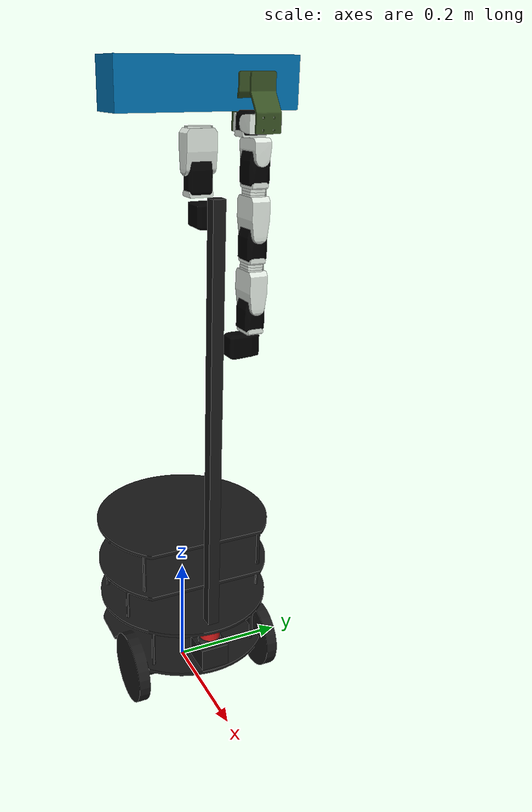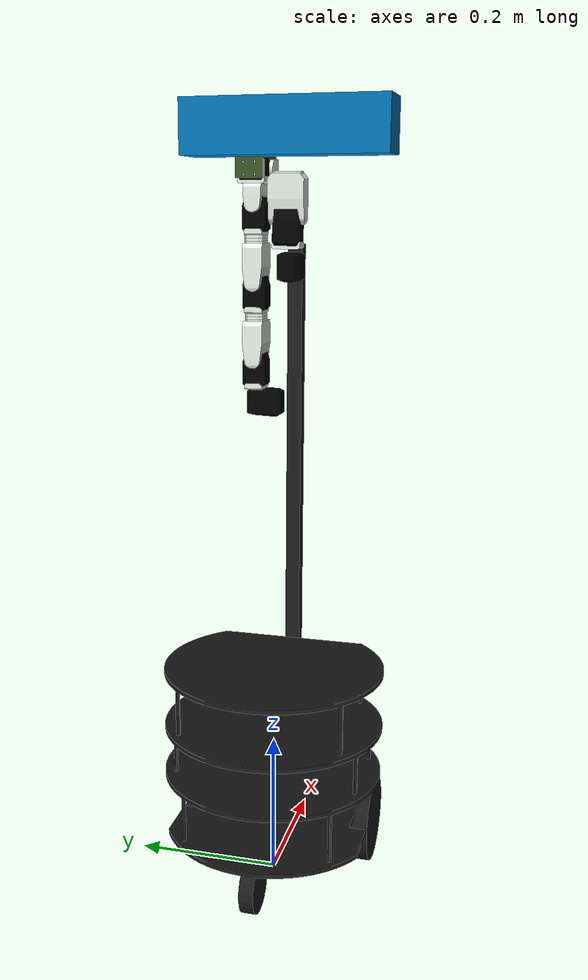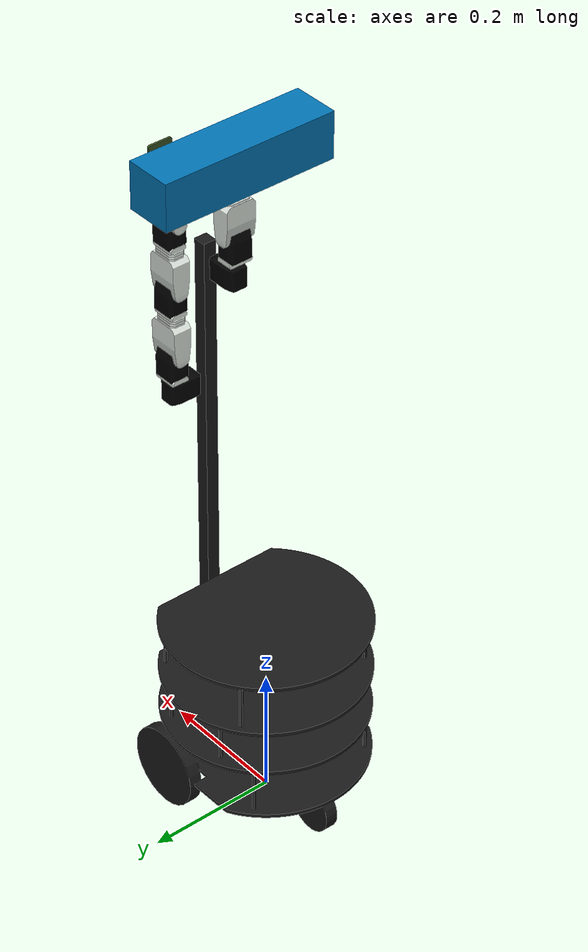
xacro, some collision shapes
<?xml version="1.0"?>

<robot name="pi_robot"
       xmlns:sensor="http://playerstage.sourceforge.net/gazebo/xmlschema/#sensor"
       xmlns:controller="http://playerstage.sourceforge.net/gazebo/xmlschema/#controller"
       xmlns:interface="http://playerstage.sourceforge.net/gazebo/xmlschema/#interface"
       xmlns:xacro="http://ros.org/wiki/xacro">

  <property name="PI_ROBOT_SCALE" value="0.0254"/>
  <property name="MESH_SCALE" value="100"/>
  <property name="GROUND_CLEARANCE" value="0.073" />

  <xacro:include filename="$(find rbx1_description)/urdf/pi_robot_head.xacro" />
  <xacro:include filename="$(find rbx1_description)/urdf/pi_robot_arm.xacro" />

  <material name="Green">
    <color rgba="0.0 0.8 0.0 1.0"/>
  </material>

  <material name="OffWhite">
    <color rgba="0.8 0.8 0.8 0.9"/>
  </material>

  <!-- base_footprint is a fictitious link(frame) that is on the ground right below base_link origin, navigation stack depends on this frame -->

  <link name="base_link">
    <inertial>
      <mass value="5.0" />
      <origin xyz="0 0 0" />
      <inertia ixx="1.0" ixy="0.0" ixz="0.0"
          iyy="1.0" iyz="0.0"
          izz="1.0" />
    </inertial>

    <visual>
      <origin xyz="0 0 ${GROUND_CLEARANCE}" rpy="0 0 -1.57" />
      <geometry>
          <mesh filename="package://rbx1_description/meshes/pi_robot.dae" scale="${PI_ROBOT_SCALE} ${PI_ROBOT_SCALE} ${PI_ROBOT_SCALE}"/>
      </geometry>
      <material name="grey">
	    <color rgba="0.1 0.1 0.1 10"/>
	  </material>
    </visual>

    <collision>
       <origin xyz="0 0 0.16" rpy="0 0 0" />
       <geometry>
          <cylinder length="0.32" radius=".15"/>
       </geometry>
     </collision>
  </link>

  <link name="base_laser_bottom">
	 <visual>
        <origin xyz="0 0 0" rpy="0 0 0" />
      <geometry>
        <box size="0.05 0.05 0.041" />
      </geometry>
        <material name="black">
           <color rgba="0.1 0.1 0.1 1.0"/>
        </material>
     </visual>
     <collision>
        <origin xyz="0 0 0" rpy="0 0 0" />
      <geometry>
        <box size="0.05 0.05 0.041" />
      </geometry>
       </collision>
	 <inertial>
       <mass value="0.1" />
         <inertia ixx="0.001" ixy="0.0" ixz="0.0"
                   iyy="0.001" iyz="0.0"
                   izz="0.001" />
      </inertial>
  </link>

  <joint name="base_laser_bottom_joint" type="fixed">
     <parent link="base_link"/>
     <child link="base_laser_bottom" />
     <origin xyz="0.123 0 ${0.0265 + GROUND_CLEARANCE}" rpy="0 0 0" />
   </joint>

  <link name="base_laser_middle">
	 <visual>
        <origin xyz="0 0 0" rpy="0 0 0" />
		<geometry>
          <cylinder length="0.0115" radius=".02"/>
        </geometry>
        <material name="dark_grey">
           <color rgba="0.2 0.2 0.2 1.0"/>
        </material>
     </visual>
     <collision>
        <origin xyz="0 0 0" rpy="0 0 0" />
		 <geometry>
          <cylinder length="0.0115" radius=".02"/>
         </geometry>
       </collision>
	 <inertial>
       <mass value="0.1" />
         <inertia ixx="0.001" ixy="0.0" ixz="0.0"
                   iyy="0.001" iyz="0.0"
                   izz="0.001" />
      </inertial>
   </link>

  <joint name="base_laser_middle_joint" type="fixed">
     <parent link="base_laser_bottom"/>
     <child link="base_laser_middle" />
     <origin xyz="0 0 0.02625" rpy="0 0 0" />
   </joint>

  <link name="base_laser">
	 <visual>
        <origin xyz="0 0 0" rpy="0 0 0" />
		<geometry>
          <cylinder length="0.0175" radius=".0185"/>
        </geometry>
        <material name="red">
           <color rgba="0.8 0.1 0.1 1.0"/>
        </material>
     </visual>
     <collision>
        <origin xyz="0 0 0" rpy="0 0 0" />
		 <geometry>
          <cylinder length="0.0175" radius=".0185"/>
         </geometry>
       </collision>
	 <inertial>
       <mass value="0.1" />
         <inertia ixx="0.001" ixy="0.0" ixz="0.0"
                   iyy="0.001" iyz="0.0"
                   izz="0.001" />
      </inertial>
   </link>

   <joint name="base_laser_joint" type="fixed">
     <parent link="base_laser_middle"/>
     <child link="base_laser" />
     <origin xyz="0 0 0.0145" rpy="0 0 0" />
   </joint>

   <!-- Attach the head -->
   <pi_robot_head parent="base_link" color="white">
     <origin xyz="${0.088 - AX12_DEPTH/2} 0 ${0.798 + GROUND_CLEARANCE}"/>
   </pi_robot_head>

    <!-- Attach the arm -->
    <pi_robot_arm parent="base_link" color="white" gripper_color="green">
      <origin xyz="0.125 ${AX12_DEPTH + 0.012} ${AX12_HEIGHT + 0.55 + GROUND_CLEARANCE}" rpy="0 0 1.57" />
    </pi_robot_arm>

</robot>

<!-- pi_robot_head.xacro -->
<robot name="pi_robot_head" xmlns:xacro="http://ros.org/wiki/xacro">
  <xacro:include filename="$(find rbx1_description)/urdf/pi_robot_head_hardware.xacro" />

  <macro name="pi_robot_head" params="parent color *origin">
    <link name="head_base_link" />
    <joint name="head_base_joint" type="fixed">
      <insert_block name="origin" />
      <parent link="${parent}"/>
      <child link="head_base_link" />
    </joint>

    <!-- fake head_pan_link joint -->
    <link name="head_pan_link" />
    <joint name="fake_head_pan_joint" type="fixed">
      <origin xyz="0 0 0" rpy="0 ${M_PI/2} ${M_PI/2}" />
      <parent link="head_pan_servo_link"/>
      <child link="head_pan_link" />
    </joint>

     <!-- fake head_tilt_link joint -->
    <link name="head_tilt_link" />
    <joint name="fake_head_tilt_joint" type="fixed">
      <origin xyz="0 0 0" rpy="0 0 ${M_PI}" />
      <parent link="head_tilt_servo_link"/>
      <child link="head_tilt_link" />
    </joint>

    <!-- head pan joint -->
    <dynamixel_AX12_fixed parent="head_base_link" name="head_pan_servo">
       <origin xyz="0 0 ${-AX12_WIDTH/2}" rpy="${M_PI/2} 0 ${-M_PI/2}"/>
    </dynamixel_AX12_fixed>
    <bioloid_F3_head_revolute parent="head_pan_servo_link" number="10" joint_name="head_pan" x_loc="0" y_loc="${AX12_WIDTH/2 + 0.005}" z_loc="0.0" ulimit="2.9" llimit="-2.9" r="${-M_PI/2}" p="${M_PI/2}" y="${M_PI}" color="${color}"/>

    <dynamixel_AX12_fixed parent="bioloid_F3_head_10_link" name="head_tilt_servo">
       <origin xyz="0 0 ${-AX12_HEIGHT-F10_HEIGHT+0.001}" rpy="0 ${M_PI} 0"/>
    </dynamixel_AX12_fixed>

    <!--head tilt joint -->
    <bioloid_F4_head_revolute parent="head_tilt_servo_link" number="10" joint_name="head_tilt" x_loc="0" y_loc="0" z_loc="0" ulimit="2.9" llimit="-2.9" color="${color}"/>
    <bioloid_F10_fixed parent="bioloid_F4_head_10_link" name="head_tilt_bracket" color="${color}">
       <origin xyz="0 0 ${F4_HEIGHT + F10_HEIGHT/2}" rpy="0 0 0"/>
    </bioloid_F10_fixed>

    <joint name="base_camera_joint" type="fixed">
      <origin xyz="-0.03 0 0.058" rpy="0 0 ${M_PI}" />
      <parent link="head_tilt_bracket_link" />
      <child link="camera_link" />
    </joint>

    <link name="camera_link">
      <inertial>
        <mass value="0.00001" />
        <origin xyz="0 0 0" />
        <inertia ixx="1.0" ixy="0.0" ixz="0.0"
          iyy="1.0" iyz="0.0"
          izz="1.0" />
      </inertial>

      <visual>
        <origin xyz="0 0 0 " rpy="0 0 0" />
        <geometry>
          <mesh filename="package://rbx1_description/meshes/kinect.dae" scale="${MESH_SCALE} ${MESH_SCALE} ${MESH_SCALE}"/>
        </geometry>
      </visual>

      <collision>
        <origin xyz="-0.0275 0.0 0.0" rpy="0 0 0" />
        <geometry>
          <box size="0.0730 .2760 0.0720"/>
        </geometry>
      </collision>
    </link>

  <joint name="camera_depth_joint" type="fixed">
    <origin xyz="0 0.018 0" rpy="0 0 0" />
    <parent link="camera_link" />
    <child link="camera_depth_frame" />
  </joint>

  <link name="camera_depth_frame">
    <inertial>
      <mass value="0.000001" />
      <origin xyz="0 0 0" />
      <inertia ixx="0.0001" ixy="0.0" ixz="0.0"
        iyy="0.0001" iyz="0.0"
        izz="0.0001" />
    </inertial>
  </link>

  <joint name="camera_depth_optical_joint" type="fixed">
    <origin xyz="0 0 0" rpy="${-M_PI/2} 0 ${-M_PI/2}" />
    <parent link="camera_depth_frame" />
    <child link="camera_depth_optical_frame" />
  </joint>

  <link name="camera_depth_optical_frame">
    <inertial>
      <mass value="0.000001" />
      <origin xyz="0 0 0" />
      <inertia ixx="0.0001" ixy="0.0" ixz="0.0"
        iyy="0.0001" iyz="0.0"
        izz="0.0001" />
    </inertial>
  </link>

  <joint name="camera_rgb_joint" type="fixed">
    <origin xyz="0 -0.005 0" rpy="0 0 0" />
    <parent link="camera_link" />
    <child link="camera_rgb_frame" />
  </joint>

  <link name="camera_rgb_frame">
    <inertial>
      <mass value="0.000001" />
      <origin xyz="0 0 0" />
      <inertia ixx="0.0001" ixy="0.0" ixz="0.0"
        iyy="0.0001" iyz="0.0"
        izz="0.0001" />
    </inertial>
  </link>

  <joint name="camera_rgb_optical_joint" type="fixed">
    <origin xyz="0 0 0" rpy="${-M_PI/2} 0 ${-M_PI/2}" />
    <parent link="camera_rgb_frame" />
    <child link="camera_rgb_optical_frame" />
  </joint>

  <link name="camera_rgb_optical_frame">
    <inertial>
      <mass value="0.000001" />
      <origin xyz="0 0 0" />
      <inertia ixx="0.0001" ixy="0.0" ixz="0.0"
        iyy="0.0001" iyz="0.0"
        izz="0.0001" />
    </inertial>
  </link>

  <link name="left_eye_link">
    <visual>
      <origin xyz="0 0 0" rpy="0 1.57 0" />
	  <geometry>
	     <cylinder length="0.01" radius="0.01" />
	  </geometry>
	  <material name="OffWhite" />
	</visual>
    <collision>
	  <origin xyz="0 0 0" rpy="0 1.57 0" />
	  <geometry>
        <cylinder length="0.01" radius="0.01" />
      </geometry>
    </collision>
    <inertial>
       <mass value="0.00001" />
       <origin xyz="0 0 0" />
       <inertia ixx="1.0" ixy="0.0" ixz="0.0"
         iyy="1.0" iyz="0.0"
         izz="1.0" />
     </inertial>
  </link>

  <link name="right_eye_link">
    <visual>
      <origin xyz="0 0 0" rpy="0 1.57 0" />
	  <geometry>
	     <cylinder length="0.01" radius="0.01" />
	  </geometry>
	  <material name="OffWhite" />
	</visual>
    <collision>
	  <origin xyz="0 0 0" rpy="0 1.57 0" />
	  <geometry>
        <cylinder length="0.01" radius="0.01" />
      </geometry>
    </collision>
    <inertial>
       <mass value="0.00001" />
       <origin xyz="0 0 0" />
       <inertia ixx="1.0" ixy="0.0" ixz="0.0"
         iyy="1.0" iyz="0.0"
         izz="1.0" />
     </inertial>
  </link>

  <joint name="left_eye_joint" type="fixed">
    <parent link="camera_link" />
    <child link="left_eye_link" />
    <origin xyz="-0.005 0.035 0" rpy="0 0 0" />
  </joint>

  <joint name="right_eye_joint" type="fixed">
    <parent link="camera_link" />
    <child link="right_eye_link" />
    <origin xyz="-0.005 -0.035 0" rpy="0 0 0" />
  </joint>

 </macro>

</robot>

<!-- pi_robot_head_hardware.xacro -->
<robot name="pi_robot_head_hardware" xmlns:xacro="http://ros.org/wiki/xacro">
  <property name="M_PI" value="3.14159"/>
  <property name="M_SCALE" value="0.001"/>
  <property name="F10_HEIGHT" value="0.004"/>
  <property name="F4_HEIGHT" value="0.0525"/>
  <property name="F3_HEIGHT" value="0.009"/>
  <property name="AX12_HEIGHT" value="0.0385"/>
  <property name="AX12_WIDTH" value="0.038"/>
  <property name="AX12_DEPTH" value="0.048"/>
  <property name="F2_HEIGHT" value="0.0265"/>
  <property name="MESH_EXT" value="dae"/>
  <property name="MESH_SCALE" value="100"/>

  <macro name="bioloid_F10_fixed" params="parent number x_loc y_loc z_loc color">
    <joint name="bioloid_F10_${number}_joint" type="fixed">
      <origin xyz="${x_loc} ${y_loc} ${z_loc}" rpy="0 0 0" />
      <parent link="${parent}"/>
      <child link="bioloid_F10_${number}_link" />
    </joint>

    <link name="bioloid_F10_${number}_link">
      <inertial>
        <mass value="0.00001" />
        <origin xyz="0 0 0" />
        <inertia ixx="1.0" ixy="0.0" ixz="0.0"
          iyy="1.0" iyz="0.0"
          izz="1.0" />
      </inertial>

      <visual>
        <origin xyz=" 0 0 0 " rpy="0 0 0" />
        <geometry>
          <mesh filename="package://rbx1_description/meshes/F10.${MESH_EXT}" scale="${M_SCALE} ${M_SCALE} ${M_SCALE}"/>
        </geometry>
        <material name="${color}"/>
      </visual>

      <collision>
        <origin xyz="0.0 0.0 0.0" rpy="0 0 0" />
        <geometry>
          <box size="0.025 0.038 0.004"/>
        </geometry>
      </collision>
    </link>
  </macro>

  <macro name="bioloid_F3_fixed" params="parent number x_loc y_loc z_loc r p y color">
    <joint name="bioloid_F3_${number}_joint" type="fixed">
      <origin xyz="${x_loc} ${y_loc} ${z_loc}" rpy="${r} ${p} ${y}" />
      <parent link="${parent}"/>
      <child link="bioloid_F3_head_${number}_link" />
    </joint>

    <link name="bioloid_F3_${number}_link">
      <inertial>
        <mass value="0.00001" />
        <origin xyz="0 0 0" />
        <inertia ixx="1.0" ixy="0.0" ixz="0.0"
          iyy="1.0" iyz="0.0"
          izz="1.0" />
      </inertial>

      <visual>
        <origin xyz=" 0 0 0 " rpy="0 0 0" />
        <geometry>
          <mesh filename="package://rbx1_description/meshes/F3.${MESH_EXT}" scale="${M_SCALE} ${M_SCALE} ${M_SCALE}"/>
        </geometry>
        <material name="${color}"/>
      </visual>

      <collision>
        <origin xyz="0.0 0.0 -0.0045" rpy="0 0 0" />
        <geometry>
          <box size="0.025 0.038 0.009"/>
        </geometry>
      </collision>
    </link>
  </macro>

  <macro name="dynamixel_AX12_fixed" params="parent number x_loc y_loc z_loc r p y">
    <joint name="dynamixel_AX12_${number}_joint" type="fixed">
      <origin xyz="${x_loc} ${y_loc} ${z_loc}" rpy="${r} ${p} ${y}" />
      <parent link="${parent}"/>
      <child link="dynamixel_AX12_${number}_link" />
    </joint>

    <link name="dynamixel_AX12_${number}_link">
      <inertial>
        <mass value="0.00001" />
        <origin xyz="0 0 0" />
        <inertia ixx="1.0" ixy="0.0" ixz="0.0"
          iyy="1.0" iyz="0.0"
          izz="1.0" />
      </inertial>

      <visual>
        <origin xyz=" 0 0 0 " rpy="0 0 0" />
        <geometry>
          <mesh filename="package://rbx1_description/meshes/ax12_box.${MESH_EXT}" scale="${M_SCALE} ${M_SCALE} ${M_SCALE}"/>
        </geometry>
        <material name="black"/>
      </visual>

      <collision>
        <origin xyz="0.0 0.0 -0.0045" rpy="0 0 0" />
        <geometry>
          <box size="0.025 0.038 0.009"/>
        </geometry>
      </collision>
    </link>
  </macro>

  <macro name="bioloid_F3_head_revolute" params="parent number joint_name x_loc y_loc z_loc ulimit llimit r p y color">
    <joint name="${joint_name}_joint" type="revolute">
      <origin xyz="${x_loc} ${y_loc} ${z_loc}" rpy="${r} ${p} ${y}" />
      <parent link="${parent}"/>
       <axis xyz="0 0 -1"/>
      <limit effort="30" velocity="1.0" lower="${llimit}" upper="${ulimit}" />
      <child link="bioloid_F3_head_${number}_link" />
    </joint>

    <link name="bioloid_F3_head_${number}_link">
      <inertial>
        <mass value="0.00001" />
        <origin xyz="0 0 0" />
        <inertia ixx="1.0" ixy="0.0" ixz="0.0"
          iyy="1.0" iyz="0.0"
          izz="1.0" />
      </inertial>

      <visual>
        <origin xyz=" 0 0 0 " rpy="0 0 0" />
        <geometry>
          <mesh filename="package://rbx1_description/meshes/F3.${MESH_EXT}" scale="${M_SCALE} ${M_SCALE} ${M_SCALE}"/>
        </geometry>
        <material name="${color}"/>
      </visual>

      <collision>
        <origin xyz="0.0 0.0 -0.0045" rpy="0 0 0" />
        <geometry>
          <box size="0.025 0.038 0.009"/>
        </geometry>
      </collision>
    </link>
  </macro>

  <macro name="bioloid_F4_head_revolute" params="parent number joint_name x_loc y_loc z_loc ulimit llimit color">
    <joint name="${joint_name}_joint" type="revolute">
      <origin xyz="${x_loc} ${y_loc} ${z_loc}" rpy="0 0 0" />
      <parent link="${parent}"/>
      <axis xyz="0 -1 0"/>
      <limit effort="30" velocity="1.0" lower="${llimit}" upper="${ulimit}" />
      <child link="bioloid_F4_head_${number}_link" />
    </joint>

    <link name="bioloid_F4_head_${number}_link">
      <inertial>
        <mass value="0.00001" />
        <origin xyz="0 0 0" />
        <inertia ixx="1.0" ixy="0.0" ixz="0.0"
          iyy="1.0" iyz="0.0"
          izz="1.0" />
      </inertial>

      <visual>
        <origin xyz=" 0 0 0 " rpy="0 0 0" />
        <geometry>
          <mesh filename="package://rbx1_description/meshes/F4.${MESH_EXT}" scale="${M_SCALE} ${M_SCALE} ${M_SCALE}"/>
        </geometry>
        <material name="${color}"/>
      </visual>

      <collision>
        <origin xyz="0.0 0.0 0.0215" rpy="0 0 0" />
        <geometry>
          <box size="0.028 0.0485 0.065"/>
        </geometry>
      </collision>
    </link>
  </macro>

</robot>

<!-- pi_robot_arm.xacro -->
<robot name="pi_robot_arm" xmlns:xacro="http://ros.org/wiki/xacro">
  <property name="MESH_SCALE" value="100"/>

  <xacro:include filename="$(find rbx1_description)/urdf/pi_robot_arm_hardware.xacro" />

  <material name="white">
    <color rgba="0.87 0.90 0.87 1.0"/>
  </material>
  <material name="black">
    <color rgba="0.0 0.0 0.0 1.0"/>
  </material>
  <material name="green">
    <color rgba="0.22 0.32 0.14 1.0"/>
  </material>

  <macro name="pi_robot_arm" params="parent color gripper_color *origin">
    <link name="arm_base_link" />
    <joint name="arm_base_joint" type="fixed">
      <insert_block name="origin" />
      <parent link="${parent}"/>
      <child link="arm_base_link" />
    </joint>

    <!-- fake gripper_link joint -->
    <link name="gripper_link" />
    <joint name="gripper_link_joint" type="fixed">
      <origin xyz="0 0 .112" rpy="0 -${M_PI/2} 0" />
      <parent link="arm_wrist_flex_link"/>
      <child link="gripper_link" />
    </joint>

    <!-- shoulder pan joint -->
    <dynamixel_AX12_fixed parent="arm_base_link" name="arm_shoulder_pan_servo">
      <origin xyz="0 0 0" rpy="${M_PI/2} 0 ${M_PI/2}"/>
    </dynamixel_AX12_fixed>
    <bioloid_F3_revolute parent="arm_shoulder_pan_servo_link" name="arm_shoulder_pan" color="${color}" vlimit="0.785" llimit="-2.617" ulimit="2.617">
      <origin xyz="0 ${AX12_WIDTH/2} 0" rpy="${-M_PI/2} ${M_PI/2} ${M_PI}" />
    </bioloid_F3_revolute>

    <!-- shoulder lift joint -->
    <dynamixel_AX12_fixed parent="arm_shoulder_pan_link" name="arm_shoulder_lift_servo">
      <origin xyz="0 0 ${-AX12_HEIGHT-F10_HEIGHT+0.001}" rpy="0 ${M_PI} 0" />
    </dynamixel_AX12_fixed>
    <bioloid_F4_revolute parent="arm_shoulder_lift_servo_link" name="arm_shoulder_lift" color="${color}" vlimit="1.571" llimit="-2.617" ulimit="2.617">
      <origin xyz="0 0 0" rpy="0 0 0" />
    </bioloid_F4_revolute>
    <bioloid_F10_fixed parent="arm_shoulder_lift_link" name="arm_shoulder_F10_0" color="${color}">
      <origin xyz="0 0 ${F4_HEIGHT+F10_HEIGHT/2}" rpy="0 0 0" />
    </bioloid_F10_fixed>
    <bioloid_F10_fixed parent="arm_shoulder_F10_0_link" name="arm_shoulder_F10_1" color="${color}">
      <origin xyz="0 0 ${F10_HEIGHT}" rpy="0 0 0" />
    </bioloid_F10_fixed>
    <bioloid_F10_fixed parent="arm_shoulder_F10_1_link" name="arm_shoulder_F10_2" color="${color}">
      <origin xyz="0 0 ${F10_HEIGHT}" rpy="0 0 0" />
    </bioloid_F10_fixed>
    <bioloid_F3_fixed parent="arm_shoulder_F10_2_link" name="arm_shoulder_F3_0" color="${color}">
      <origin xyz="0 0 ${F10_HEIGHT/2}" rpy="0 ${M_PI} 0" />
    </bioloid_F3_fixed>

    <!-- elbow joint -->
    <dynamixel_AX12_fixed parent="arm_shoulder_F3_0_link" name="arm_elbow_flex_servo">
      <origin xyz="0 0 ${-AX12_HEIGHT-F10_HEIGHT+0.001}" rpy="0 ${M_PI} 0"/>
    </dynamixel_AX12_fixed>
    <bioloid_F4_revolute parent="arm_elbow_flex_servo_link" name="arm_elbow_flex" color="${color}" vlimit="1.571" llimit="-2.617" ulimit="2.617">
      <origin xyz="0 0 0" rpy="0 0 0" />
    </bioloid_F4_revolute>
    <bioloid_F10_fixed parent="arm_elbow_flex_link" name="arm_elbow_F10_0" color="${color}">
      <origin xyz="0 0 ${F4_HEIGHT+F10_HEIGHT/2}" rpy="0 0 0" />
    </bioloid_F10_fixed>
    <bioloid_F10_fixed parent="arm_elbow_F10_0_link" name="arm_elbow_F10_1" color="${color}">
      <origin xyz="0 0 ${F10_HEIGHT}" rpy="0 0 0" />
    </bioloid_F10_fixed>
    <bioloid_F10_fixed parent="arm_elbow_F10_1_link" name="arm_elbow_F10_2" color="${color}">
      <origin xyz="0 0 ${F10_HEIGHT}" rpy="0 0 0" />
    </bioloid_F10_fixed>
    <bioloid_F3_fixed parent="arm_elbow_F10_2_link" name="arm_elbow_F3_0" color="${color}">
      <origin xyz="0 0 ${F10_HEIGHT/2}" rpy="0 ${M_PI} 0" />
    </bioloid_F3_fixed>

    <!-- wrist joint -->
    <dynamixel_AX12_fixed parent="arm_elbow_F3_0_link" name="arm_wrist_flex_servo">
      <origin xyz="0 0 ${-AX12_HEIGHT-F10_HEIGHT+0.001}" rpy="0 ${M_PI} 0"/>
    </dynamixel_AX12_fixed>
    <bioloid_F2_revolute parent="arm_wrist_flex_servo_link" name="arm_wrist_flex" color="${color}" vlimit="1.571" llimit="-1.745" ulimit="1.745">
      <origin xyz="0 0 0" rpy="0 0 0" />
    </bioloid_F2_revolute>
    <bioloid_F3_fixed parent="arm_wrist_flex_link" name="arm_wrist_F3_0" color="${color}">
      <origin xyz="0 0.016 ${F2_HEIGHT}" rpy="0 ${M_PI} ${-M_PI/2}" />
    </bioloid_F3_fixed>

    <!-- gripper joint -->
    <dynamixel_AX12_fixed parent="arm_wrist_F3_0_link" name="gripper_servo">
      <origin xyz="-0.02275 0 ${-AX12_WIDTH/2}" rpy="${M_PI} ${M_PI/2} 0"/>
    </dynamixel_AX12_fixed>

    <!-- finger 1 -->
    <joint name="gripper_joint" type="revolute">
      <origin xyz="0 0 0" rpy="0 0 0"/>
      <axis xyz="0 1 0"/>
      <limit effort="30" velocity="0.785" lower="-0.060" upper="0.50" />
      <parent link="gripper_servo_link"/>
      <child link="gripper_active_link" />
    </joint>
    <link name="gripper_active_link">
      <inertial>
        <mass value="0.00001" />
        <origin xyz="0 0 0" />
        <inertia ixx="1.0" ixy="0.0" ixz="0.0"
          iyy="1.0" iyz="0.0"
          izz="1.0" />
      </inertial>
      <visual>
        <origin xyz=" 0 0 0 " rpy="0 0 0" />
        <geometry>
          <mesh filename="package://rbx1_description/meshes/F2.dae" scale="${M_SCALE} ${M_SCALE} ${M_SCALE}"/>
        </geometry>
        <material name="${color}"/>
      </visual>
      <collision>
        <origin xyz="0.0 0.0 0.00775" rpy="0 0 0" />
        <geometry>
          <box size="0.025 0.0485 0.0375"/>
        </geometry>
      </collision>
    </link>
    <finger_fixed parent="gripper_active_link" name="gripper_active_finger" color="${gripper_color}">
      <origin xyz="0 0 ${F2_HEIGHT}" rpy="0 0 0" />
    </finger_fixed>

    <!-- finger 2 -->
    <bioloid_F3_fixed parent="gripper_servo_link" name="gripper_static" color="${color}">
      <origin xyz="0 0 ${-AX12_HEIGHT-F10_HEIGHT+0.001}" rpy="0 ${M_PI} 0" />
    </bioloid_F3_fixed>
    <finger_fixed parent="gripper_static_link" name="gripper_static_finger" color="${gripper_color}">
      <origin xyz="0 0 0" rpy="0 0 ${M_PI}" />
    </finger_fixed>

  </macro>

</robot>

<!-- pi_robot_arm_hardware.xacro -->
<robot name="pi_robot_arm_hardware" xmlns:xacro="http://ros.org/wiki/xacro">

  <property name="M_PI" value="3.14159"/>
  <property name="M_SCALE" value="0.001"/>
  <property name="MESH_SCALE" value="100"/>
  <property name="F10_HEIGHT" value="0.004"/>
  <property name="F4_HEIGHT" value="0.0525"/>
  <property name="F3_HEIGHT" value="0.009"/>
  <property name="AX12_HEIGHT" value="0.0385"/>
  <property name="AX12_WIDTH" value="0.038"/>
  <property name="AX12_DEPTH" value="0.048"/>
  <property name="F2_HEIGHT" value="0.0265"/>

  <macro name="bioloid_F10_fixed" params="parent name color *origin">
    <joint name="${name}_joint" type="fixed">
      <insert_block name="origin" />
      <parent link="${parent}"/>
      <child link="${name}_link" />
    </joint>

    <link name="${name}_link">
      <inertial>
        <mass value="0.00001" />
        <origin xyz="0 0 0" />
        <inertia ixx="1.0" ixy="0.0" ixz="0.0"
          iyy="1.0" iyz="0.0"
          izz="1.0" />
      </inertial>

      <visual>
        <origin xyz=" 0 0 0 " rpy="0 0 0" />
        <geometry>
          <mesh filename="package://rbx1_description/meshes/F10.dae" scale="${M_SCALE} ${M_SCALE} ${M_SCALE}"/>
        </geometry>
        <material name="${color}"/>
      </visual>

      <collision>
        <origin xyz="0.0 0.0 0.0" rpy="0 0 0" />
        <geometry>
          <box size="0.025 0.038 0.004"/>
        </geometry>
      </collision>
    </link>
  </macro>

  <macro name="finger_fixed" params="parent name color *origin">
    <joint name="${name}_joint" type="fixed">
      <insert_block name="origin" />
      <parent link="${parent}"/>
      <child link="${name}_link" />
    </joint>

    <link name="${name}_link">
      <inertial>
        <mass value="0.00001" />
        <origin xyz="0 0 0" />
        <inertia ixx="1.0" ixy="0.0" ixz="0.0"
          iyy="1.0" iyz="0.0"
          izz="1.0" />
      </inertial>

      <visual>
        <origin xyz=" 0 0 0 " rpy="0 0 0" />
        <geometry>
          <mesh filename="package://rbx1_description/meshes/finger.dae" scale="${M_SCALE} ${M_SCALE} ${M_SCALE}"/>
        </geometry>
        <material name="${color}"/>
      </visual>

      <collision>
        <origin xyz="0.02645 0.0 -0.00655" rpy="0 0 0" />
        <geometry>
          <box size="0.0783 0.03801 0.0193"/>
        </geometry>
      </collision>
    </link>
  </macro>

  <macro name="bioloid_F3_fixed" params="parent name color *origin">
    <joint name="${name}_joint" type="fixed">
      <insert_block name="origin" />
      <parent link="${parent}"/>
      <child link="${name}_link" />
    </joint>

    <link name="${name}_link">
      <inertial>
        <mass value="0.00001" />
        <origin xyz="0 0 0" />
        <inertia ixx="1.0" ixy="0.0" ixz="0.0"
          iyy="1.0" iyz="0.0"
          izz="1.0" />
      </inertial>

      <visual>
        <origin xyz=" 0 0 0 " rpy="0 0 0" />
        <geometry>
          <mesh filename="package://rbx1_description/meshes/F3.dae" scale="${M_SCALE} ${M_SCALE} ${M_SCALE}"/>
        </geometry>
        <material name="${color}"/>
      </visual>

      <collision>
        <origin xyz="0.0 0.0 -0.0045" rpy="0 0 0" />
        <geometry>
          <box size="0.025 0.038 0.009"/>
        </geometry>
      </collision>
    </link>
  </macro>

  <macro name="dynamixel_AX12_fixed" params="parent name *origin">
    <joint name="${name}_joint" type="fixed">
      <insert_block name="origin" />
      <parent link="${parent}"/>
      <child link="${name}_link" />
    </joint>

    <link name="${name}_link">
      <inertial>
        <mass value="0.00001" />
        <origin xyz="0 0 0" />
        <inertia ixx="1.0" ixy="0.0" ixz="0.0"
          iyy="1.0" iyz="0.0"
          izz="1.0" />
      </inertial>

      <visual>
        <origin xyz=" 0 0 0 " rpy="0 0 0" />
        <geometry>
          <mesh filename="package://rbx1_description/meshes/ax12_box.${MESH_EXT}" scale="${MESH_SCALE} ${MESH_SCALE} ${MESH_SCALE}"/>
        </geometry>
        <material name="black"/>
      </visual>

      <collision>
        <origin xyz="0.0 0.0 -0.01241" rpy="0 0 0" />
        <geometry>
          <box size="0.025 0.038 0.04762"/>
        </geometry>
      </collision>
    </link>
  </macro>

  <macro name="bioloid_F3_revolute" params="parent name color llimit ulimit vlimit *origin">
    <joint name="${name}_joint" type="revolute">
      <insert_block name="origin" />
      <axis xyz="0 0 -1"/>
      <limit effort="30" velocity="${vlimit}" lower="${llimit}" upper="${ulimit}" />
      <parent link="${parent}"/>
      <child link="${name}_link" />
    </joint>

    <link name="${name}_link">
      <inertial>
        <mass value="0.00001" />
        <origin xyz="0 0 0" />
        <inertia ixx="1.0" ixy="0.0" ixz="0.0"
          iyy="1.0" iyz="0.0"
          izz="1.0" />
      </inertial>

      <visual>
        <origin xyz=" 0 0 0 " rpy="0 0 0" />
        <geometry>
          <mesh filename="package://rbx1_description/meshes/F3.dae" scale="${M_SCALE} ${M_SCALE} ${M_SCALE}"/>
        </geometry>
        <material name="${color}"/>
      </visual>

      <collision>
        <origin xyz="0.0 0.0 -0.0045" rpy="0 0 0" />
        <geometry>
          <box size="0.025 0.038 0.009"/>
        </geometry>
      </collision>
    </link>
  </macro>

  <macro name="bioloid_F2_revolute" params="parent name color llimit ulimit vlimit *origin">
    <joint name="${name}_joint" type="revolute">
      <insert_block name="origin" />
      <axis xyz="0 1 0"/>
      <limit effort="30" velocity="${vlimit}" lower="${llimit}" upper="${ulimit}" />
      <parent link="${parent}"/>
      <child link="${name}_link" />
    </joint>

    <link name="${name}_link">
      <inertial>
        <mass value="0.00001" />
        <origin xyz="0 0 0" />
        <inertia ixx="1.0" ixy="0.0" ixz="0.0"
          iyy="1.0" iyz="0.0"
          izz="1.0" />
      </inertial>

      <visual>
        <origin xyz=" 0 0 0 " rpy="0 0 0" />
        <geometry>
          <mesh filename="package://rbx1_description/meshes/F2.dae" scale="${M_SCALE} ${M_SCALE} ${M_SCALE}"/>
        </geometry>
        <material name="${color}"/>
      </visual>

      <collision>
        <origin xyz="0.0 0.0 0.00775" rpy="0 0 0" />
        <geometry>
          <box size="0.025 0.0485 0.0375"/>
        </geometry>
      </collision>
    </link>
  </macro>

  <macro name="bioloid_F4_revolute" params="parent name color llimit ulimit vlimit *origin">
    <joint name="${name}_joint" type="revolute">
      <insert_block name="origin" />
      <axis xyz="0 1 0"/>
      <limit effort="30" velocity="${vlimit}" lower="${llimit}" upper="${ulimit}" />
      <parent link="${parent}"/>
      <child link="${name}_link" />
    </joint>

    <link name="${name}_link">
      <inertial>
        <mass value="0.00001" />
        <origin xyz="0 0 0" />
        <inertia ixx="1.0" ixy="0.0" ixz="0.0"
          iyy="1.0" iyz="0.0"
          izz="1.0" />
      </inertial>

      <visual>
        <origin xyz=" 0 0 0 " rpy="0 0 0" />
        <geometry>
          <mesh filename="package://rbx1_description/meshes/F4.dae" scale="${M_SCALE} ${M_SCALE} ${M_SCALE}"/>
        </geometry>
        <material name="${color}"/>
      </visual>

      <collision>
        <origin xyz="0.0 0.0 0.0215" rpy="0 0 0" />
        <geometry>
          <box size="0.028 0.0485 0.065"/>
        </geometry>
      </collision>
    </link>
  </macro>

</robot>
